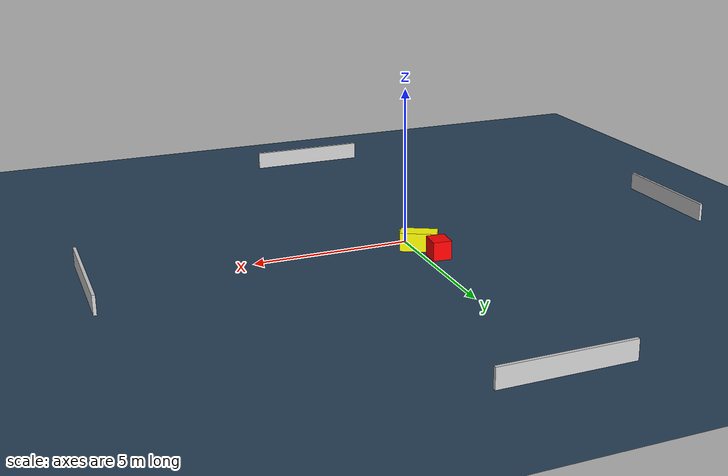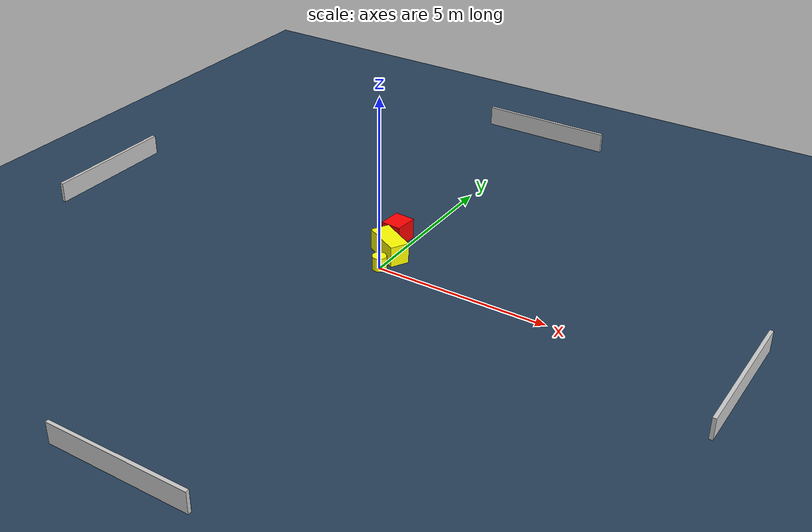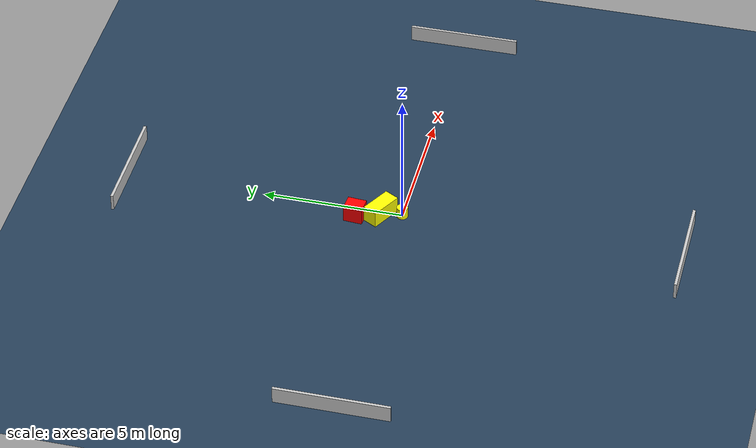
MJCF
<?xml version="1.0" ?>
<mujoco model="generated_environment">
  <option timestep="0.01" integrator="RK4" cone="elliptic"/>
  <default>
    <geom density="1"/>
  </default>
  <asset>
    <texture builtin="gradient" height="3072" name="skybox" rgb1="0.3 0.5 0.7" rgb2="0 0 0" type="skybox" width="512"/>
    <texture builtin="checker" height="300" name="groundplane" rgb1="0.2 0.3 0.4" rgb2="0.1 0.2 0.3" type="2d" width="300"/>
    <material name="groundplane" reflectance="0.2" texrepeat="5 5" texture="groundplane"/>
  </asset>
  <worldbody>
    <light dir="0 0 -1" directional="true" pos="0 0 1.5"/>
    <geom condim="3" friction="0.5 0.005 0.001" material="groundplane" name="floor" pos="0 0 0" size="0 0 0.05" type="plane"/>
    <body name="walls">
      <geom name="wall_1" condim="4" pos="-10.0 0.0 0.3" rgba="0.800000011920929 0.800000011920929 0.800000011920929 1.0" size="0.05 2.0 0.3" type="box"/>
      <geom name="wall_2" condim="4" pos="10.0 0.0 0.3" rgba="0.800000011920929 0.800000011920929 0.800000011920929 1.0" size="0.05 2.0 0.3" type="box"/>
      <geom name="wall_3" condim="4" pos="0.0 -10.0 0.3" rgba="0.800000011920929 0.800000011920929 0.800000011920929 1.0" size="2.0 0.05 0.3" type="box"/>
      <geom name="wall_4" condim="4" pos="0.0 10.0 0.3" rgba="0.800000011920929 0.800000011920929 0.800000011920929 1.0" size="2.0 0.05 0.3" type="box"/>
    </body>
    <body name="robot">
      <joint name="joint_x" type="slide" pos="0 0 0" axis="1 0 0"/>
      <joint name="joint_y" type="slide" pos="0 0 0" axis="0 1 0"/>
      <geom name="robot" type="cylinder" pos="0.0 0.0 0.2" size="0.2 0.2 0.0" mass="5.0" friction="1.0 0.005 0.0001" condim="4" rgba="1.0 1.0 0.0 1.0"/>
    </body>
    <body name="obstacle_1_movable">
      <geom name="obstacle_1_movable" condim="4" pos="-0.14756279709105194 0.738972589531475 0.3" euler="0 0 151.05873454120243" friction="0.0 0.005 0.001" rgba="1.0 1.0 0.0 1.0" size="0.5831556740081648 0.275035657643746 0.3" type="box" mass="0.1"/>
      <joint type="free"/>
    </body>
    <body name="obstacle_2_static">
      <geom name="obstacle_2_static" condim="4" pos="-0.43497737866534814 1.602763281774981 0.3" euler="0 0 265.59514571799997" friction="0.0 0.005 0.001" rgba="1.0 0.0 0.0 1.0" size="0.3402458748967969 0.2968626395631165 0.3" type="box"/>
    </body>
  </worldbody>
  <actuator>
    <motor name="actuator_x" joint="joint_x" gear="1" ctrlrange="-1 1"/>
    <motor name="actuator_y" joint="joint_y" gear="1" ctrlrange="-1 1"/>
  </actuator>
</mujoco>
